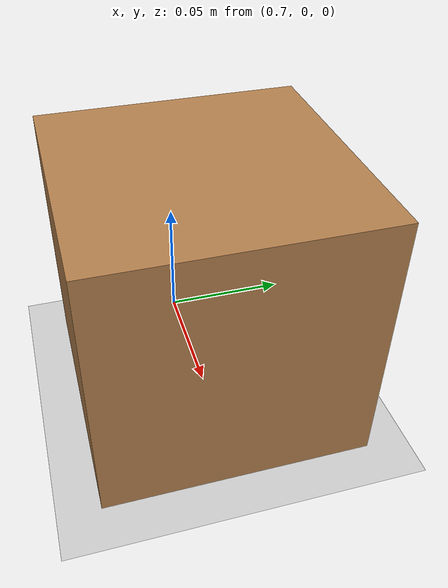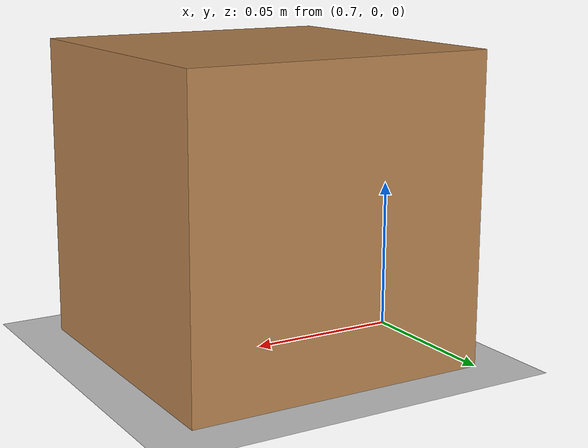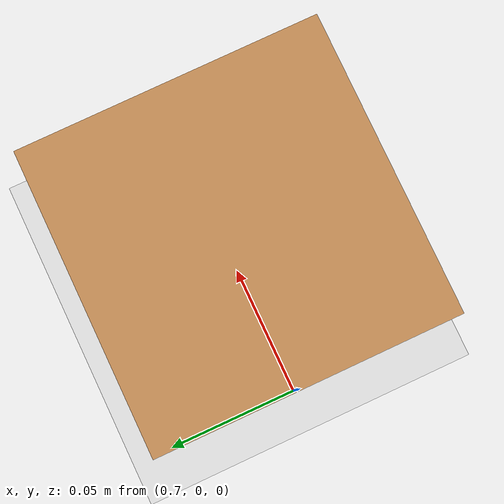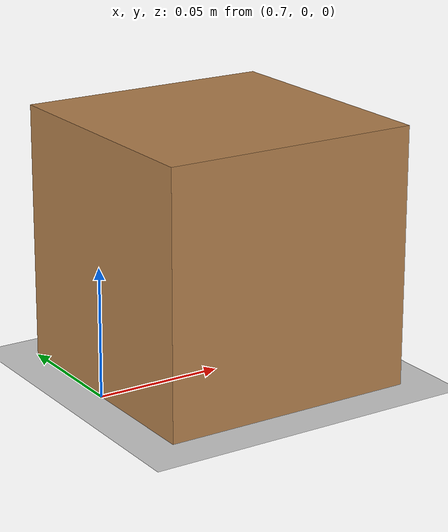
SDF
<?xml version="1.0" ?>
<sdf version='1.6'>
  <world name='default'>
    <light name='sun' type='directional'>
      <cast_shadows>1</cast_shadows>
      <pose frame=''>0 0 10 0 -0 0</pose>
      <diffuse>0.8 0.8 0.8 1</diffuse>
      <specular>0.2 0.2 0.2 1</specular>
      <attenuation>
        <range>1000</range>
        <constant>0.9</constant>
        <linear>0.01</linear>
        <quadratic>0.001</quadratic>
      </attenuation>
      <direction>-0.5 0.1 -0.9</direction>
    </light>
    <model name='ground_plane'>
      <static>1</static>
      <link name='link'>
        <collision name='collision'>
          <geometry>
            <plane>
              <normal>0 0 1</normal>
              <size>100 100</size>
            </plane>
          </geometry>
          <surface>
            <contact>
              <collide_bitmask>65535</collide_bitmask>
              <ode/>
            </contact>
            <friction>
              <ode>
                <mu>100</mu>
                <mu2>50</mu2>
              </ode>
              <torsional>
                <ode/>
              </torsional>
            </friction>
            <bounce/>
          </surface>
          <max_contacts>10</max_contacts>
        </collision>
        <visual name='visual'>
          <cast_shadows>0</cast_shadows>
          <geometry>
            <plane>
              <normal>0 0 1</normal>
              <size>100 100</size>
            </plane>
          </geometry>
          <material>
            <script>
              <uri>file://media/materials/scripts/gazebo.material</uri>
              <name>Gazebo/Grey</name>
            </script>
          </material>
        </visual>
        <self_collide>0</self_collide>
        <enable_wind>0</enable_wind>
        <kinematic>0</kinematic>
      </link>
    </model>
    <gravity>0 0 -9.8</gravity>
    <magnetic_field>6e-06 2.3e-05 -4.2e-05</magnetic_field>
    <atmosphere type='adiabatic'/>
    <physics name='default_physics' default='0' type='ode'>
      <ode>
        <solver>
          <type>quick</type>
          <iters>10</iters>
          <sor>1.3</sor>
        </solver>
        <constraints>
          <cfm>0.0</cfm>
          <erp>0.2</erp>
          <contact_max_correcting_vel>100.0</contact_max_correcting_vel>
          <contact_surface_layer>0.001</contact_surface_layer>
        </constraints>
      </ode>
      <max_step_size>0.001</max_step_size>
      <real_time_factor>1</real_time_factor>
      <real_time_update_rate>1000</real_time_update_rate>
    </physics>
    <scene>
      <ambient>0.4 0.4 0.4 1</ambient>
      <background>0.7 0.7 0.7 1</background>
      <shadows>1</shadows>
    </scene>
    <audio>
      <device>default</device>
    </audio>
    <wind/>
    <spherical_coordinates>
      <surface_model>EARTH_WGS84</surface_model>
      <latitude_deg>0</latitude_deg>
      <longitude_deg>0</longitude_deg>
      <elevation>0</elevation>
      <heading_deg>0</heading_deg>
    </spherical_coordinates>
    <model name='wood_cube_10cm'>
      <static>0</static>
      <link name='link'>
        <pose frame=''>0.75 0 0.05 0 -0 0</pose>
        <inertial>
          <mass>0.5167</mass>
          <inertia>
            <ixx>0.000861167</ixx>
            <ixy>0</ixy>
            <ixz>0</ixz>
            <iyy>0.000861167</iyy>
            <iyz>0</iyz>
            <izz>0.000861167</izz>
          </inertia>
        </inertial>
        <collision name='collision'>
          <geometry>
            <box>
              <size>0.1 0.1 0.1</size>
            </box>
          </geometry>
          <surface>
            <contact>
              <poissons_ratio>0.347</poissons_ratio>
              <elastic_modulus>8.8e+09</elastic_modulus>
              <ode>
                <kp>100000</kp>
                <kd>100</kd>
                <max_vel>100</max_vel>
                <min_depth>0.001</min_depth>
              </ode>
            </contact>
            <friction>
              <torsional>
                <coefficient>1</coefficient>
                <use_patch_radius>0</use_patch_radius>
                <surface_radius>0.01</surface_radius>
                <ode/>
              </torsional>
              <ode/>
            </friction>
            <bounce/>
          </surface>
          <max_contacts>10</max_contacts>
        </collision>
        <visual name='visual'>
          <geometry>
            <box>
              <size>0.1 0.1 0.1</size>
            </box>
          </geometry>
          <material>
            <script>
              <uri>file://media/materials/scripts/gazebo.material</uri>
              <name>Gazebo/Wood</name>
            </script>
          </material>
        </visual>
        <self_collide>0</self_collide>
        <enable_wind>0</enable_wind>
        <kinematic>0</kinematic>
      </link>
    </model>

  </world>
</sdf>
